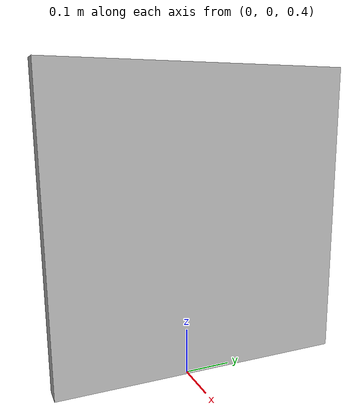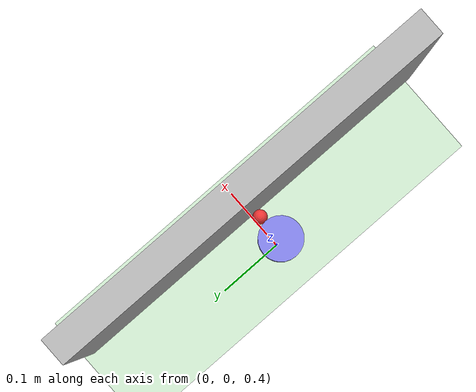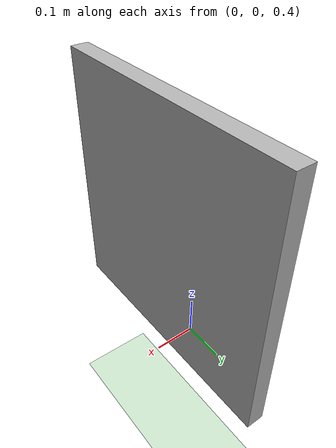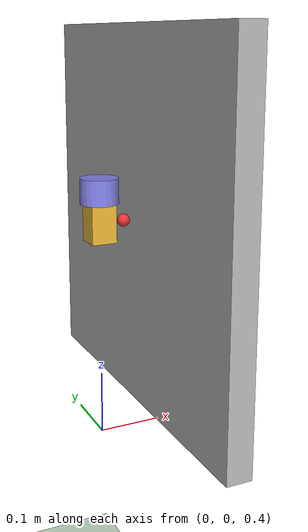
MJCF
<!-- models/kuka_tcp_scene.xml -->
<mujoco model="kuka_tcp_scene">
  <option timestep="0.004" gravity="0 0 -9.81" integrator="implicitfast"/>
  <compiler angle="radian"/>

  <worldbody>
    <light pos="0 0 3" dir="0 0 -1"/>
    <geom name="floor" type="plane" size="5 5 0.1" pos="0 0 0" rgba="0.8 0.9 0.8 1"/>

    <!-- Mocap target: driven by the RSI endpoint to the corrected TCP pose. -->
    <body name="target" mocap="true" pos="0 0 0.8">
      <geom type="box" size="0.01 0.01 0.01" rgba="0 1 0 0.3" contype="0" conaffinity="0"/>
    </body>

    <!-- Floating end-body (the TCP flange). Free joint = 6 DOF. -->
    <body name="flange" pos="0 0 0.8">
      <freejoint name="flange_free"/>
      <inertial pos="0 0 0" mass="1.0" diaginertia="0.01 0.01 0.01"/>
      <geom name="flange_geom" type="cylinder" size="0.03 0.02" rgba="0.5 0.5 0.9 1"/>

      <body name="payload" pos="0 0 -0.05">
        <inertial pos="0 0 0" mass="1.0" diaginertia="0.001 0.001 0.001"/>
        <!-- Force/torque sensor site (mount pose set at load time by editing). -->
        <site name="ft_site" pos="0 0 0" size="0.005" rgba="1 0 0 1"/>
        <geom name="payload_geom" type="box" size="0.02 0.02 0.03" rgba="0.9 0.7 0.2 1"/>
        <!-- Contact tip that touches the wall (points along +X toward the wall). -->
        <geom name="tip" type="sphere" size="0.01" pos="0.04 0 0" rgba="0.9 0.2 0.2 1"/>
      </body>
    </body>

    <!-- Wall along +X, just past the tip's home position so a small push makes
         contact. Toggled off (contype/conaffinity=0) at load time. -->
    <body name="wall" pos="0.075 0 0.75">
      <geom name="wall_geom" type="box" size="0.02 0.3 0.3" rgba="0.7 0.7 0.7 1"/>
    </body>
  </worldbody>

  <!-- Weld the flange to the mocap target: elastic tracking via solref/solimp.
       Stiff so free-space tracking error stays sub-mm under payload gravity. -->
  <equality>
    <weld name="track" body1="flange" body2="target"
          solref="0.008 1" solimp="0.99 0.999 0.001"/>
  </equality>

  <sensor>
    <force name="ft_force" site="ft_site"/>
    <torque name="ft_torque" site="ft_site"/>
  </sensor>
</mujoco>
